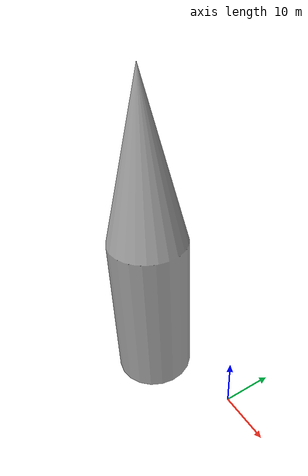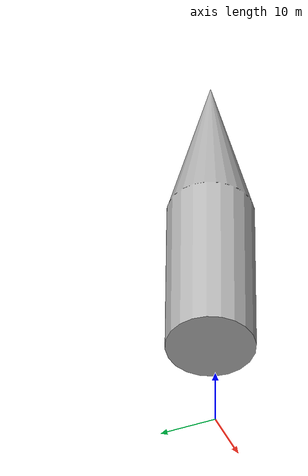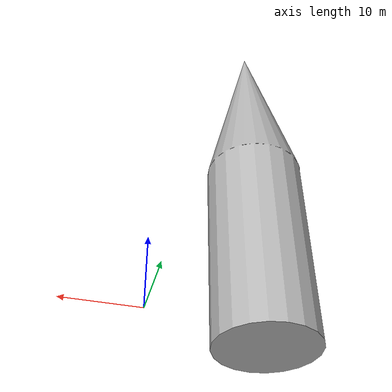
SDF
<?xml version='1.0'?>
<sdf version='1.6'>
	<model name='simple_tower'>

		<static>true</static>

		<link name='link'>
			<visual name='visual'>
				<geometry>
					<mesh>
						<uri>model://simple_tower/meshes/simple_tower.stl</uri>
					</mesh>
				</geometry>
				<material>
					<script>
						<uri>model://simple_tower/materials/scripts</uri>
						<uri>model://simple_tower/materials/textures</uri>
						<name>vrc/concrete</name>
					</script>
				</material>
			</visual>
			<collision name='collision'>
				<geometry>
					<mesh>
						<uri>model://simple_tower/meshes/simple_tower.stl</uri>
					</mesh>
				</geometry>
				<material>
					<script>
						<uri>model://simple_tower/materials/scripts</uri>
						<uri>model://simple_tower/materials/textures</uri>
						<name>vrc/concrete</name>
					</script>
				</material>
			</collision>
		</link>
	</model>
</sdf>
